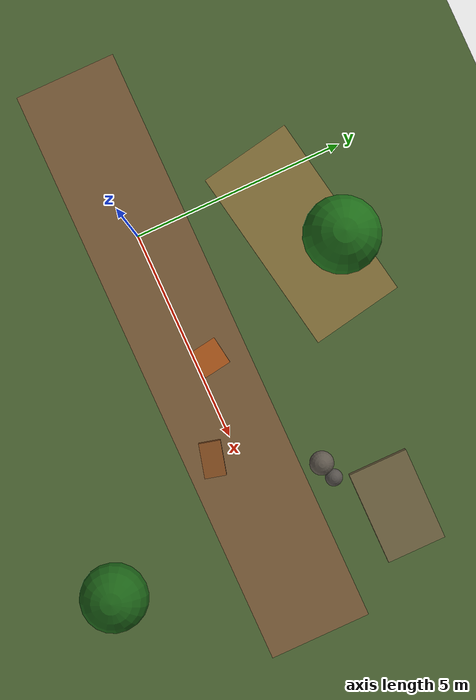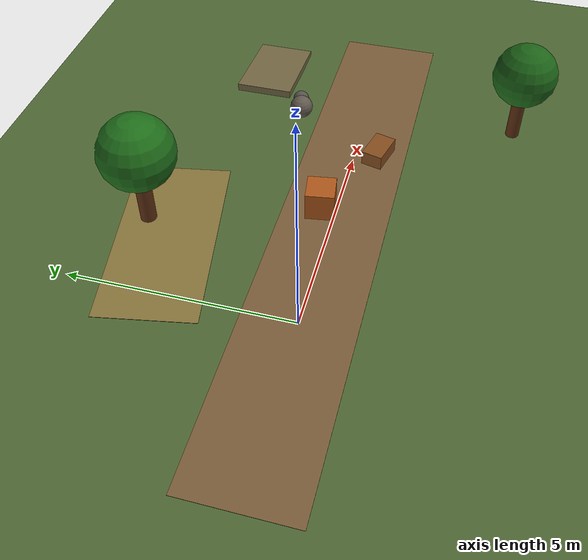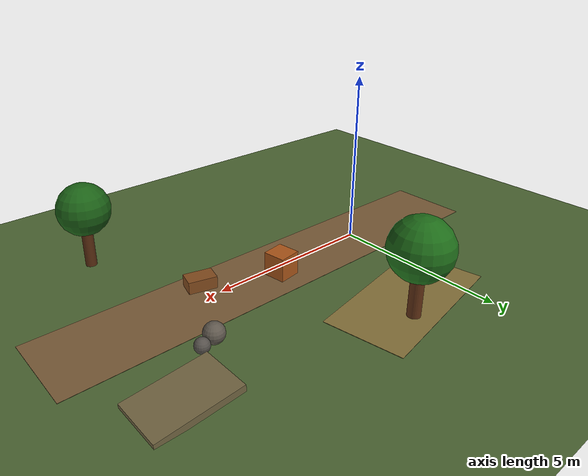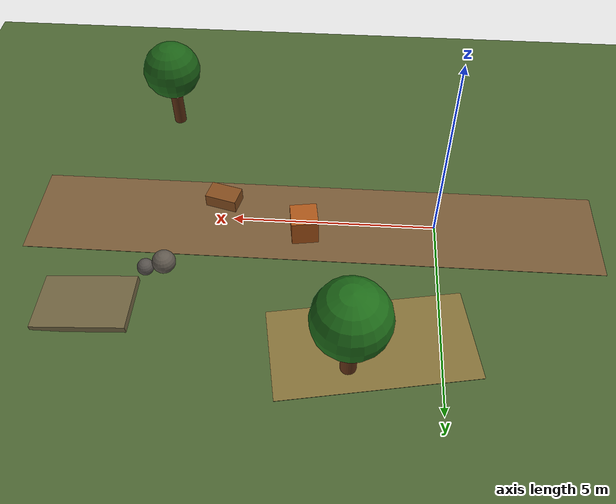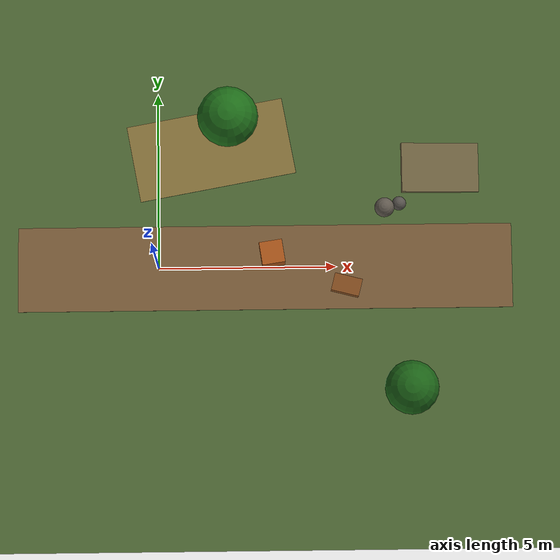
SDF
<?xml version="1.0"?>
<sdf version="1.9">
  <world name="navigen_outdoor">
    <physics name="navigen_physics" type="ignored">
      <max_step_size>0.004</max_step_size>
      <real_time_factor>1.0</real_time_factor>
    </physics>

    <plugin filename="gz-sim-physics-system" name="gz::sim::systems::Physics"/>
    <plugin filename="gz-sim-user-commands-system" name="gz::sim::systems::UserCommands"/>
    <plugin filename="gz-sim-scene-broadcaster-system" name="gz::sim::systems::SceneBroadcaster"/>
    <plugin filename="gz-sim-sensors-system" name="gz::sim::systems::Sensors">
      <render_engine>ogre2</render_engine>
    </plugin>
    <plugin filename="gz-sim-imu-system" name="gz::sim::systems::Imu"/>

    <gravity>0 0 -9.81</gravity>
    <magnetic_field>0.000006 0.000023 -0.000042</magnetic_field>
    <scene>
      <ambient>0.45 0.45 0.42 1</ambient>
      <background>0.55 0.72 0.88 1</background>
      <shadows>true</shadows>
    </scene>

    <light name="sun" type="directional">
      <cast_shadows>true</cast_shadows>
      <pose>0 0 10 0 0 0</pose>
      <diffuse>0.9 0.86 0.76 1</diffuse>
      <specular>0.25 0.25 0.25 1</specular>
      <direction>-0.4 0.2 -0.9</direction>
    </light>

    <model name="terrain">
      <static>true</static>
      <link name="ground">
        <collision name="ground_collision">
          <geometry><plane><normal>0 0 1</normal><size>30 20</size></plane></geometry>
          <surface>
            <friction><ode><mu>1.2</mu><mu2>0.9</mu2></ode></friction>
          </surface>
        </collision>
        <visual name="ground_visual">
          <geometry><plane><normal>0 0 1</normal><size>30 20</size></plane></geometry>
          <material><ambient>0.24 0.32 0.16 1</ambient><diffuse>0.30 0.40 0.20 1</diffuse></material>
        </visual>
        <visual name="dirt_path">
          <pose>3 0 0.006 0 0 0</pose>
          <geometry><box><size>14 2.4 0.01</size></box></geometry>
          <material><ambient>0.38 0.28 0.16 1</ambient><diffuse>0.48 0.36 0.22 1</diffuse></material>
        </visual>
        <visual name="dry_patch_left">
          <pose>1.5 3.4 0.007 0 0 0.18</pose>
          <geometry><box><size>4.5 2.2 0.011</size></box></geometry>
          <material><ambient>0.42 0.36 0.18 1</ambient><diffuse>0.53 0.45 0.23 1</diffuse></material>
        </visual>
      </link>
    </model>

    <model name="central_box_obstacle">
      <static>true</static>
      <pose>3.2 0.35 0.35 0 0 0.15</pose>
      <link name="box">
        <collision name="collision"><geometry><box><size>0.65 0.65 0.7</size></box></geometry></collision>
        <visual name="visual">
          <geometry><box><size>0.65 0.65 0.7</size></box></geometry>
          <material><ambient>0.52 0.25 0.08 1</ambient><diffuse>0.68 0.34 0.10 1</diffuse></material>
        </visual>
      </link>
    </model>

    <model name="low_box_obstacle">
      <static>true</static>
      <pose>5.3 -0.55 0.18 0 0 -0.25</pose>
      <link name="box">
        <collision name="collision"><geometry><box><size>0.8 0.5 0.36</size></box></geometry></collision>
        <visual name="visual">
          <geometry><box><size>0.8 0.5 0.36</size></box></geometry>
          <material><ambient>0.38 0.22 0.10 1</ambient><diffuse>0.52 0.30 0.12 1</diffuse></material>
        </visual>
      </link>
    </model>

    <model name="rock_cluster">
      <static>true</static>
      <pose>6.4 1.65 0 0 0 0</pose>
      <link name="rocks">
        <collision name="rock_a_collision">
          <pose>0 0 0.28 0 0 0</pose>
          <geometry><sphere><radius>0.28</radius></sphere></geometry>
        </collision>
        <visual name="rock_a_visual">
          <pose>0 0 0.28 0 0 0</pose>
          <geometry><sphere><radius>0.28</radius></sphere></geometry>
          <material><ambient>0.27 0.25 0.23 1</ambient><diffuse>0.38 0.35 0.31 1</diffuse></material>
        </visual>
        <collision name="rock_b_collision">
          <pose>0.42 0.12 0.20 0 0 0</pose>
          <geometry><sphere><radius>0.20</radius></sphere></geometry>
        </collision>
        <visual name="rock_b_visual">
          <pose>0.42 0.12 0.20 0 0 0</pose>
          <geometry><sphere><radius>0.20</radius></sphere></geometry>
          <material><ambient>0.23 0.22 0.21 1</ambient><diffuse>0.34 0.32 0.30 1</diffuse></material>
        </visual>
      </link>
    </model>

    <model name="tree_left">
      <static>true</static>
      <pose>2.0 4.0 0 0 0 0</pose>
      <link name="tree">
        <collision name="trunk_collision">
          <pose>0 0 0.8 0 0 0</pose>
          <geometry><cylinder><radius>0.18</radius><length>1.6</length></cylinder></geometry>
        </collision>
        <visual name="trunk_visual">
          <pose>0 0 0.8 0 0 0</pose>
          <geometry><cylinder><radius>0.18</radius><length>1.6</length></cylinder></geometry>
          <material><ambient>0.25 0.12 0.05 1</ambient><diffuse>0.38 0.19 0.08 1</diffuse></material>
        </visual>
        <visual name="canopy_visual">
          <pose>0 0 1.9 0 0 0</pose>
          <geometry><sphere><radius>0.85</radius></sphere></geometry>
          <material><ambient>0.08 0.28 0.07 1</ambient><diffuse>0.12 0.43 0.10 1</diffuse></material>
        </visual>
      </link>
    </model>

    <model name="tree_right">
      <static>true</static>
      <pose>7.0 -3.6 0 0 0 0</pose>
      <link name="tree">
        <collision name="trunk_collision">
          <pose>0 0 0.75 0 0 0</pose>
          <geometry><cylinder><radius>0.16</radius><length>1.5</length></cylinder></geometry>
        </collision>
        <visual name="trunk_visual">
          <pose>0 0 0.75 0 0 0</pose>
          <geometry><cylinder><radius>0.16</radius><length>1.5</length></cylinder></geometry>
          <material><ambient>0.24 0.12 0.05 1</ambient><diffuse>0.36 0.18 0.07 1</diffuse></material>
        </visual>
        <visual name="canopy_visual">
          <pose>0 0 1.75 0 0 0</pose>
          <geometry><sphere><radius>0.75</radius></sphere></geometry>
          <material><ambient>0.08 0.25 0.07 1</ambient><diffuse>0.11 0.39 0.09 1</diffuse></material>
        </visual>
      </link>
    </model>

    <model name="shallow_ramp">
      <static>true</static>
      <pose>8.0 2.8 0.10 0 0.08 0</pose>
      <link name="ramp">
        <collision name="collision"><geometry><box><size>2.2 1.4 0.18</size></box></geometry></collision>
        <visual name="visual">
          <geometry><box><size>2.2 1.4 0.18</size></box></geometry>
          <material><ambient>0.34 0.30 0.20 1</ambient><diffuse>0.45 0.40 0.26 1</diffuse></material>
        </visual>
      </link>
    </model>
  </world>
</sdf>
